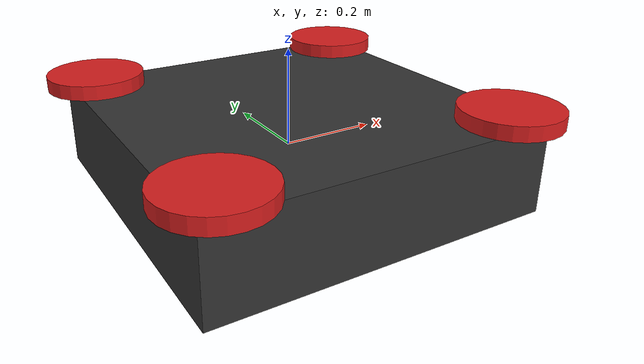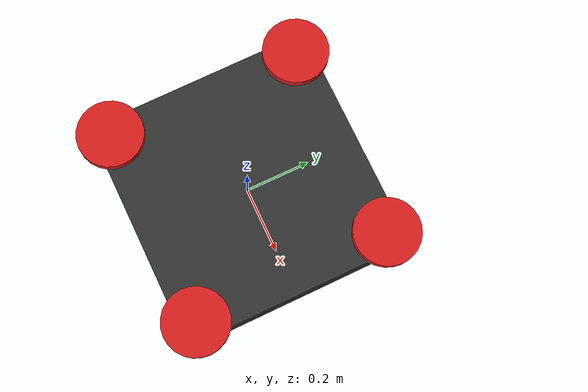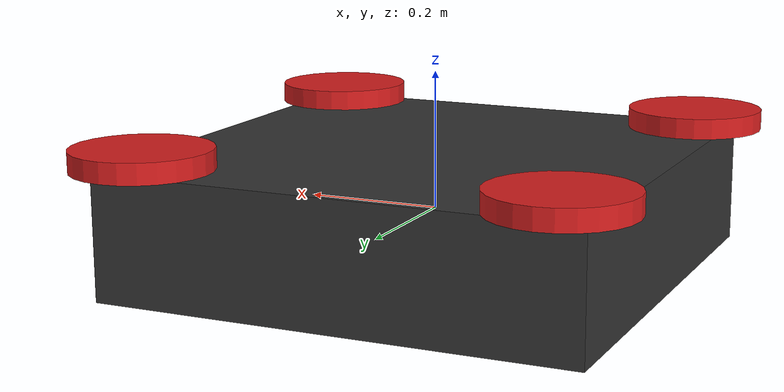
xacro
<?xml version="1.0"?>
<robot xmlns:xacro="http://www.ros.org/wiki/xacro" name="mars_drone">

  <xacro:property name="base_length" value="0.70"/>
  <xacro:property name="base_width" value="0.70"/>
  <xacro:property name="base_height" value="0.18"/>
  <xacro:property name="rotor_radius" value="0.10"/>
  <xacro:property name="rotor_thickness" value="0.03"/>
  <xacro:property name="rotor_offset" value="0.30"/>

  <link name="base_link">
    <inertial>
      <origin xyz="0 0 0" rpy="0 0 0"/>
      <mass value="1.5"/>
      <inertia ixx="0.06" ixy="0.0" ixz="0.0" iyy="0.06" iyz="0.0" izz="0.10"/>
    </inertial>

    <collision name="base_collision">
      <origin xyz="0 0 0" rpy="0 0 0"/>
      <geometry>
        <box size="${base_length} ${base_width} ${base_height}"/>
      </geometry>
    </collision>

    <visual name="base_visual">
      <origin xyz="0 0 0" rpy="0 0 0"/>
      <geometry>
        <box size="${base_length} ${base_width} ${base_height}"/>
      </geometry>
      <material name="base_gray">
        <color rgba="0.2 0.2 0.2 1.0"/>
      </material>
    </visual>
  </link>

  <xacro:macro name="rotor" params="name x y">
    <link name="${name}">
      <inertial>
        <origin xyz="0 0 0" rpy="0 0 0"/>
        <mass value="0.05"/>
        <inertia ixx="0.0002" ixy="0.0" ixz="0.0" iyy="0.0002" iyz="0.0" izz="0.0003"/>
      </inertial>

      <collision name="${name}_collision">
        <origin xyz="0 0 0" rpy="0 0 0"/>
        <geometry>
          <cylinder radius="${rotor_radius}" length="${rotor_thickness}"/>
        </geometry>
      </collision>

      <visual name="${name}_visual">
        <origin xyz="0 0 0" rpy="0 0 0"/>
        <geometry>
          <cylinder radius="${rotor_radius}" length="${rotor_thickness}"/>
        </geometry>
        <material name="rotor_red">
          <color rgba="0.85 0.12 0.12 1.0"/>
        </material>
      </visual>
    </link>

    <joint name="${name}_joint" type="fixed">
      <parent link="base_link"/>
      <child link="${name}"/>
      <origin xyz="${x} ${y} ${base_height/2 + rotor_thickness/2}" rpy="0 0 0"/>
    </joint>
  </xacro:macro>

  <xacro:rotor name="rotor_front_left"  x="${ rotor_offset}" y="${ rotor_offset}"/>
  <xacro:rotor name="rotor_front_right" x="${ rotor_offset}" y="${-rotor_offset}"/>
  <xacro:rotor name="rotor_back_left"   x="${-rotor_offset}" y="${ rotor_offset}"/>
  <xacro:rotor name="rotor_back_right"  x="${-rotor_offset}" y="${-rotor_offset}"/>

  <gazebo reference="base_link">
    <material>Gazebo/DarkGrey</material>
  </gazebo>

  <gazebo reference="rotor_front_left">
    <material>Gazebo/Red</material>
  </gazebo>
  <gazebo reference="rotor_front_right">
    <material>Gazebo/Red</material>
  </gazebo>
  <gazebo reference="rotor_back_left">
    <material>Gazebo/Red</material>
  </gazebo>
  <gazebo reference="rotor_back_right">
    <material>Gazebo/Red</material>
  </gazebo>

  <gazebo>
    <plugin name="drone_planar_move" filename="libgazebo_ros_planar_move.so">
      <ros>
        <namespace>/drone</namespace>
        <remapping>cmd_vel:=cmd_vel</remapping>
        <remapping>odom:=planar_odom</remapping>
      </ros>
      <update_rate>100</update_rate>
      <publish_rate>30</publish_rate>
      <publish_odom>true</publish_odom>
      <publish_odom_tf>false</publish_odom_tf>
      <odometry_frame>world</odometry_frame>
      <robot_base_frame>base_link</robot_base_frame>
      <covariance_x>0.0001</covariance_x>
      <covariance_y>0.0001</covariance_y>
      <covariance_yaw>0.0002</covariance_yaw>
    </plugin>
  </gazebo>

  <gazebo>
    <plugin name="drone_p3d" filename="libgazebo_ros_p3d.so">
      <ros>
        <namespace>/drone</namespace>
        <remapping>odom:=odom</remapping>
      </ros>
      <body_name>base_link</body_name>
      <frame_name>world</frame_name>
      <update_rate>50</update_rate>
      <xyz_offset>0 0 0</xyz_offset>
      <rpy_offset>0 0 0</rpy_offset>
      <gaussian_noise>0.0</gaussian_noise>
    </plugin>
  </gazebo>

</robot>
